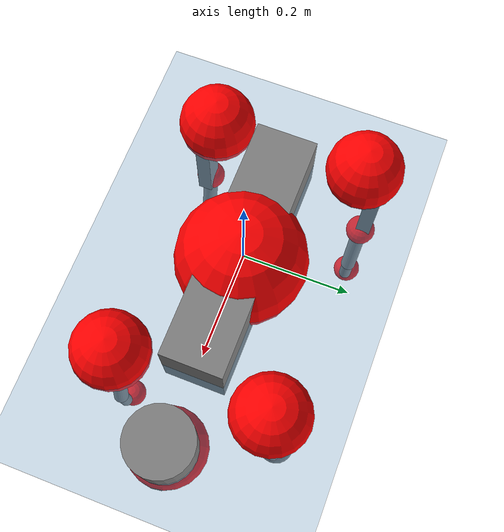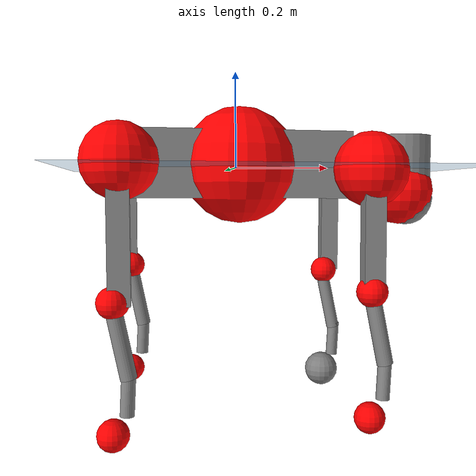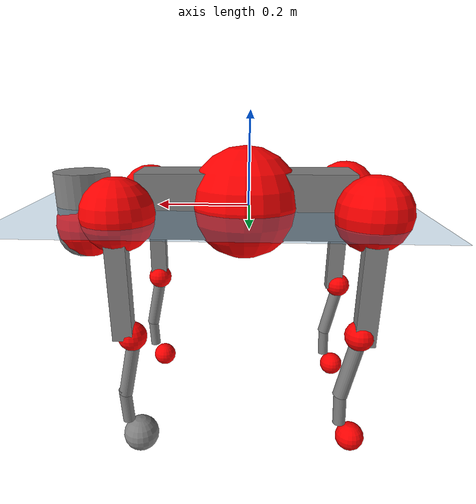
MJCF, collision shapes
<mujoco model="go2">
  <compiler angle="radian" assetdir="assets" balanceinertia="true" inertiafromgeom="false"/>

  <option timestep="0.005" density="1.2" viscosity="2e-05"/>

  <size nkey="1"/>

  <visual>
    <quality shadowsize="8192"/>
    <map shadowclip="0.5"/>
  </visual>

  <default>
    <default class="/">
      <geom contype="0" conaffinity="0" group="1" solref="-1000 -80"/>
      <site size="0.01 0.005 0.005" group="5"/>
      <general forcelimited="true" biastype="affine" gainprm="20" biasprm="0 -20 -0.5"/>
      <default class="go2">
        <joint armature="0.01" damping="0.01" frictionloss="0.2"/>
        <geom condim="1" margin="0.001"/>
        <default class="visual">
          <geom type="mesh" group="2"/>
        </default>
        <default class="collision">
          <geom group="3"/>
          <default class="foot">
            <geom size="0.022 0 0" condim="6" priority="1" friction="0.8 0.02 0.01" solimp="0.015 1 0.022"/>
          </default>
        </default>
        <default class="reward_collision_sphere">
          <geom group="5" rgba="1 0 0 1"/>
        </default>
      </default>
    </default>
  </default>

  <asset>
    <texture type="skybox" colorspace="auto" name="//unnamed_texture_0" builtin="gradient" rgb1="0.95 0.95 0.95" rgb2="0.95 0.95 0.95" width="100" height="600"/>
    <texture type="2d" colorspace="auto" name="texplane" builtin="checker" rgb1="0.345 0.575 0.748" rgb2="0.345 0.575 0.748" markrgb="1 1 1" width="512" height="512"/>
    <material name="MatPlane" class="/" texture="texplane" texuniform="true" texrepeat="2 2" specular="0.9"/>
    <material name="metal" class="/" rgba="0.9 0.95 0.95 1"/>
    <material name="black" class="/" rgba="0 0 0 1"/>
    <material name="white" class="/"/>
    <material name="gray" class="/" rgba="0.671705 0.692426 0.77427 1"/>
    <mesh name="base_0" class="/" file="base_0.obj"/>
    <mesh name="base_1" class="/" file="base_1.obj"/>
    <mesh name="base_2" class="/" file="base_2.obj"/>
    <mesh name="base_3" class="/" file="base_3.obj"/>
    <mesh name="base_4" class="/" file="base_4.obj"/>
    <mesh name="hip_0" class="/" file="hip_0.obj"/>
    <mesh name="hip_1" class="/" file="hip_1.obj"/>
    <mesh name="thigh_0" class="/" file="thigh_0.obj"/>
    <mesh name="thigh_1" class="/" file="thigh_1.obj"/>
    <mesh name="thigh_mirror_0" class="/" file="thigh_mirror_0.obj"/>
    <mesh name="thigh_mirror_1" class="/" file="thigh_mirror_1.obj"/>
    <mesh name="calf_0" class="/" file="calf_0.obj"/>
    <mesh name="calf_1" class="/" file="calf_1.obj"/>
    <mesh name="calf_mirror_0" class="/" file="calf_mirror_0.obj"/>
    <mesh name="calf_mirror_1" class="/" file="calf_mirror_1.obj"/>
    <mesh name="foot" class="/" file="foot.obj"/>
  </asset>

  <worldbody>
    <geom name="floor" class="/" size="100 100 0.125" type="plane" group="0" material="MatPlane"/>
    <light name="toplight_shadow" class="/" pos="0 0 5" dir="0.0990148 0.0990148 -0.990148" type="directional" ambient="0.04 0.04 0.04" diffuse="0.55 0.55 0.55" specular="0.12 0.12 0.12"/>
    <light name="toplight_fill" class="/" pos="0 0 5" dir="0.0990148 0.0990148 -0.990148" type="directional" castshadow="false" ambient="0.04 0.04 0.04" diffuse="0.3 0.3 0.3" specular="0.08 0.08 0.08"/>
    <body name="trunk" childclass="go2" pos="0.00843166 -0.000815427 0.00585627" quat="0.999993 0.00120707 0.00156507 -0.00313752">
      <inertial pos="0.0328563 -0.00637288 -0.00532539" quat="0.0327015 0.709817 -0.0376246 0.70262" mass="12.7606" diaginertia="0.285836 0.320492 0.0422883"/>
      <joint name="//unnamed_joint_0" type="free" armature="0" damping="0" frictionloss="0"/>
      <geom name="//unnamed_geom_1" class="visual" material="black" mesh="base_0"/>
      <geom name="//unnamed_geom_2" class="visual" material="black" mesh="base_1"/>
      <geom name="//unnamed_geom_3" class="visual" material="black" mesh="base_2"/>
      <geom name="//unnamed_geom_4" class="visual" material="white" mesh="base_3"/>
      <geom name="//unnamed_geom_5" class="visual" material="gray" mesh="base_4"/>
      <geom name="trunk_1" class="collision" size="0.232404 0.0577613 0.0704256" type="box"/>
      <geom name="trunk_2" class="collision" size="0.0617768 0.0555992" pos="0.362208 0 0.0116755" type="cylinder"/>
      <geom name="trunk_3" class="collision" size="0.0580702" pos="0.372375 0 -0.0700533"/>
      <geom name="//unnamed_geom_9" class="reward_collision_sphere" size="0.123554"/>
      <geom name="//unnamed_geom_10" class="reward_collision_sphere" size="0.0741322" pos="0.355853 0 -0.05254"/>
      <site name="imu" pos="-0.0647836 0.068337 0.0694318" size="0.0123554"/>
      <camera name="track" pos="0 -2.5363 0" quat="0.707107 0.707107 0 0" mode="trackcom"/>
      <camera name="ego_camera" pos="0.396522 0 0.05254" quat="-0.5 -0.5 0.5 0.5"/>
      <body name="FL_hip" pos="0.245765 0.0615679 0.00509471" quat="0.999978 0.000363715 0.00139316 -0.00646673">
        <inertial pos="-0.000842227 0.00313262 0.00254756" quat="0.529759 0.500455 0.478473 0.489861" mass="1.0868" diaginertia="0.00250143 0.00169238 0.000820177"/>
        <joint name="FL_hip_joint" pos="0 0 0" axis="0.999459 0.0317887 -0.00848154" stiffness="0.0148895" range="-1.27853 1.01448" armature="0.00641442" damping="0.0158933" frictionloss="0.259022"/>
        <geom name="//unnamed_geom_11" class="visual" material="metal" mesh="hip_0"/>
        <geom name="//unnamed_geom_12" class="visual" material="gray" mesh="hip_1"/>
        <geom name="//unnamed_geom_13" class="collision" size="0.0568347 0.0247107" pos="0 0.101452 0" quat="0.707107 0.707107 0 0" type="cylinder"/>
        <geom name="//unnamed_geom_14" class="reward_collision_sphere" size="0.0741322" pos="0 0.0887706 0"/>
        <body name="FL_thigh" pos="-0.00159616 0.123426 0.00361675" quat="1 -0.000158231 -6.57033e-05 1.66583e-05">
          <inertial pos="-0.00565673 -0.0165609 -0.024462" quat="0.829242 0.0829867 -0.0350894 0.551579" mass="2.22887" diaginertia="0.0195891 0.0208672 0.00188571"/>
          <joint name="FL_thigh_joint" pos="0 0 0" axis="-0.000563296 0.999978 -0.00658051" range="-1.54672 3.22916" armature="0.0164196" damping="0.0762338" frictionloss="0.246768"/>
          <geom name="//unnamed_geom_15" class="visual" material="metal" mesh="thigh_0"/>
          <geom name="//unnamed_geom_16" class="visual" material="gray" mesh="thigh_1"/>
          <geom name="//unnamed_geom_17" class="collision" size="0.131585 0.0151353 0.0210041" pos="0 0 -0.124345" quat="0.707107 0 0.707107 0" type="box"/>
          <body name="FL_calf" pos="-0.0139794 -0.0124592 -0.25691" quat="1 -2.6757e-05 0.000114273 -0.000276136">
            <inertial pos="0.011099 0.00579111 -0.17306" quat="0.70785 0.000377725 -0.00826483 0.706314" mass="0.39541" diaginertia="0.00451159 0.00501008 0.000118752"/>
            <joint name="FL_calf_joint" pos="0 0 0" axis="-0.0127416 0.999903 -0.00560861" stiffness="0.0659412" range="-2.87984 -0.621277" armature="0.0128815" damping="0" frictionloss="0.253389"/>
            <geom name="//unnamed_geom_18" class="visual" material="gray" mesh="calf_0"/>
            <geom name="//unnamed_geom_19" class="visual" material="black" mesh="calf_1"/>
            <geom name="FL_calf0" class="collision" size="0.0148264 0.0741322" pos="0.0101672 0 -0.0700533" quat="0.994493 0 -0.104807 0" type="cylinder"/>
            <geom name="//unnamed_geom_21" class="collision" size="0.0135909 0.0401549" pos="0.0254181 0 -0.172798" quat="0.999688 0 0.0249974 0" type="cylinder"/>
            <geom name="//unnamed_geom_22" class="visual" pos="0 0 -0.248689" quat="1 0 0 0" material="black" mesh="foot"/>
            <geom name="FL_foot" class="foot" size="0.0397274" pos="-0.00254181 0 -0.248689"/>
            <geom name="//unnamed_geom_24" class="reward_collision_sphere" size="0.0308884"/>
            <geom name="//unnamed_geom_25" class="reward_collision_sphere" size="0.0308884" pos="-0.00254181 0 -0.248689"/>
            <site name="FL_foot" class="foot" pos="-0.00254181 0 -0.248689" size="0.0123554"/>
          </body>
        </body>
      </body>
      <body name="FR_hip" pos="0.240183 -0.0648926 -0.0121094" quat="1 2.285e-05 -0.000614869 -9.98801e-05">
        <inertial pos="-0.00416803 0.0055246 0.00115828" quat="0.529748 0.513564 0.50464 0.448283" mass="1.06657" diaginertia="0.00267056 0.00155809 0.000865822"/>
        <joint name="FR_hip_joint" pos="0 0 0" axis="0.999998 0.000842528 0.00169034" stiffness="0.00097078" range="-1.22192 1.0566" armature="0.0123111" damping="0" frictionloss="0.20141"/>
        <geom name="//unnamed_geom_26" class="visual" pos="0 8.76355e-10 3.75887e-08" quat="4.63268e-05 1 0 0" material="metal" mesh="hip_0"/>
        <geom name="//unnamed_geom_27" class="visual" pos="0 1.42068e-09 -9.29712e-08" quat="4.63268e-05 1 0 0" material="gray" mesh="hip_1"/>
        <geom name="//unnamed_geom_28" class="collision" size="0.0568347 0.0247107" pos="0 -0.101452 0" quat="0.707107 0.707107 0 0" type="cylinder"/>
        <geom name="//unnamed_geom_29" class="reward_collision_sphere" size="0.0741322" pos="0 -0.0887706 0"/>
        <body name="FR_thigh" pos="-0.00547069 -0.121096 0.00955103" quat="0.999999 -0.000221948 -0.00132457 0.00101294">
          <inertial pos="-0.00397329 0.0284342 -0.0257754" quat="0.556762 -0.0695694 0.131959 0.817168" mass="1.76768" diaginertia="0.018018 0.0162834 0.00162066"/>
          <joint name="FR_thigh_joint" pos="0 0 0" axis="-0.00354447 -0.999962 -0.00801023" stiffness="0.0175948" range="-3.24879 1.38016" armature="0.0178008" damping="0.0148638" frictionloss="0.221566"/>
          <geom name="//unnamed_geom_30" class="visual" material="metal" mesh="thigh_mirror_0"/>
          <geom name="//unnamed_geom_31" class="visual" material="gray" mesh="thigh_mirror_1"/>
          <geom name="//unnamed_geom_32" class="collision" size="0.131585 0.0151353 0.0210041" pos="0 0 -0.124345" quat="0.707107 0 0.707107 0" type="box"/>
          <body name="FR_calf" pos="-0.000528856 0.00053854 -0.247424" quat="1 6.37742e-08 2.85651e-07 6.91296e-07">
            <inertial pos="0.00642767 0.00195804 -0.179128" quat="0.691736 0.0217856 0.00773849 0.721781" mass="0.596918" diaginertia="0.00546647 0.00469142 0.000154791"/>
            <joint name="FR_calf_joint" pos="0 0 0" axis="0.00591708 -0.999861 0.0156192" stiffness="0.0289636" range="0.864556 2.84507" armature="0.00691899" damping="0.00556887" frictionloss="0.252949"/>
            <geom name="//unnamed_geom_33" class="visual" material="gray" mesh="calf_mirror_0"/>
            <geom name="//unnamed_geom_34" class="visual" material="black" mesh="calf_mirror_1"/>
            <geom name="FR_calf0" class="collision" size="0.016062 0.0741322" pos="0.012709 0 -0.0700533" quat="0.995004 0 -0.0998334 0" type="cylinder"/>
            <geom name="//unnamed_geom_36" class="collision" size="0.0135909 0.0401549" pos="0.0254181 0 -0.172798" quat="0.999688 0 0.0249974 0" type="cylinder"/>
            <geom name="//unnamed_geom_37" class="visual" pos="0 0 -0.248689" quat="1 0 0 0" material="black" mesh="foot"/>
            <geom name="FR_foot" class="foot" size="0.0217828" pos="-0.00254181 0 -0.248689"/>
            <geom name="//unnamed_geom_39" class="reward_collision_sphere" size="0.0308884"/>
            <geom name="//unnamed_geom_40" class="reward_collision_sphere" size="0.0308884" pos="-0.00254181 0 -0.248689"/>
            <site name="FR_foot" class="foot" pos="-0.00254181 0 -0.248689" size="0.0123554"/>
          </body>
        </body>
      </body>
      <body name="RL_hip" pos="-0.244393 0.0644263 0.0117536" quat="1 -2.12312e-06 -9.98188e-05 4.30676e-05">
        <inertial pos="0.00826366 0.00220664 0.0114337" quat="0.507114 0.495569 0.497989 0.499253" mass="1.10116" diaginertia="0.00255564 0.00215938 0.00105038"/>
        <joint name="RL_hip_joint" pos="0 0 0" axis="-0.999918 0.00475212 0.0119058" range="-1.31287 0.820491" armature="0.0123164" damping="0.0457061" frictionloss="0.107165"/>
        <geom name="//unnamed_geom_41" class="visual" pos="-9.00332e-10 0 -1.76486e-07" quat="4.63268e-05 0 1 0" material="metal" mesh="hip_0"/>
        <geom name="//unnamed_geom_42" class="visual" pos="-1.45955e-09 0 -1.56518e-07" quat="4.63268e-05 0 1 0" material="gray" mesh="hip_1"/>
        <geom name="//unnamed_geom_43" class="collision" size="0.0568347 0.0247107" pos="0 0.101452 0" quat="0.707107 0.707107 0 0" type="cylinder"/>
        <geom name="//unnamed_geom_44" class="reward_collision_sphere" size="0.0741322" pos="0 0.0887706 0"/>
        <body name="RL_thigh" pos="0.000361945 0.123406 -0.00238177" quat="1 0.000128153 -4.83776e-05 4.02436e-05">
          <inertial pos="0.00626028 -0.0294332 -0.0245816" quat="0.826304 0.0629813 -0.0713585 0.555125" mass="2.08021" diaginertia="0.0213628 0.0182785 0.00205174"/>
          <joint name="RL_thigh_joint" pos="0 0 0" axis="-0.0277659 0.998506 0.0470687" stiffness="0.017717" range="-0.298244 4.57135" armature="0.00980919" damping="0" frictionloss="0.230561"/>
          <geom name="//unnamed_geom_45" class="visual" material="metal" mesh="thigh_0"/>
          <geom name="//unnamed_geom_46" class="visual" material="gray" mesh="thigh_1"/>
          <geom name="//unnamed_geom_47" class="collision" size="0.131585 0.0151353 0.0210041" pos="0 0 -0.124345" quat="0.707107 0 0.707107 0" type="box"/>
          <body name="RL_calf" pos="0.00736564 -0.0049554 -0.239772" quat="1 -0.000141027 -0.000162817 0.000213464">
            <inertial pos="0.00140056 0.00623648 -0.172924" quat="0.704438 -0.0112929 0.0413791 0.708468" mass="0.514516" diaginertia="0.00494972 0.00460702 0.000122874"/>
            <joint name="RL_calf_joint" pos="0 0 0" axis="0.0151133 0.999535 0.0264865" stiffness="0.0686374" range="-2.79657 -0.826044" armature="0.0113438" damping="0.00521653" frictionloss="0.163043"/>
            <geom name="//unnamed_geom_48" class="visual" material="gray" mesh="calf_0"/>
            <geom name="//unnamed_geom_49" class="visual" material="black" mesh="calf_1"/>
            <geom name="RL_calf0" class="collision" size="0.016062 0.0741322" pos="0.012709 0 -0.0700533" quat="0.995004 0 -0.0998334 0" type="cylinder"/>
            <geom name="//unnamed_geom_51" class="collision" size="0.0135909 0.0401549" pos="0.0254181 0 -0.172798" quat="0.999688 0 0.0249974 0" type="cylinder"/>
            <geom name="//unnamed_geom_52" class="visual" pos="0 0 -0.248689" quat="1 0 0 0" material="black" mesh="foot"/>
            <geom name="RL_foot" class="foot" size="0.0228648" pos="-0.00254181 0 -0.248689"/>
            <geom name="//unnamed_geom_54" class="reward_collision_sphere" size="0.0308884"/>
            <geom name="//unnamed_geom_55" class="reward_collision_sphere" size="0.0308884" pos="-0.00254181 0 -0.248689"/>
            <site name="RL_foot" class="foot" pos="-0.00254181 0 -0.248689" size="0.0123554"/>
          </body>
        </body>
      </body>
      <body name="RR_hip" pos="-0.244333 -0.0558375 -6.73352e-05" quat="0.999998 6.72172e-05 -0.00183285 0.00106575">
        <inertial pos="0.00802747 -0.0135612 0.00830297" quat="0.500575 0.496292 0.49904 0.504061" mass="1.39346" diaginertia="0.00346127 0.0023188 0.00121655"/>
        <joint name="RR_hip_joint" pos="0 0 0" axis="-0.999826 -0.0171 0.00740772" range="-1.13137 1.2426" armature="0.0159865" damping="0.0617277" frictionloss="0.197807"/>
        <geom name="//unnamed_geom_56" class="visual" pos="9.00236e-10 8.76355e-10 -2.14074e-07" quat="2.14617e-09 4.63268e-05 4.63268e-05 -1" material="metal" mesh="hip_0"/>
        <geom name="//unnamed_geom_57" class="visual" pos="1.45978e-09 1.42068e-09 -6.35465e-08" quat="2.14617e-09 4.63268e-05 4.63268e-05 -1" material="gray" mesh="hip_1"/>
        <geom name="//unnamed_geom_58" class="collision" size="0.0568347 0.0247107" pos="0 -0.101452 0" quat="0.707107 0.707107 0 0" type="cylinder"/>
        <geom name="//unnamed_geom_59" class="reward_collision_sphere" size="0.0741322" pos="0 -0.0887706 0"/>
        <body name="RR_thigh" pos="-0.00142763 -0.119492 -0.0120195" quat="1 -0.000392903 0.000189191 0.000174947">
          <inertial pos="0.00249844 0.0197859 -0.0382335" quat="0.553883 -0.022507 0.0827219 0.828169" mass="2.74584" diaginertia="0.0207328 0.0215614 0.00188206"/>
          <joint name="RR_thigh_joint" pos="0 0 0" axis="0.0105405 -0.999737 0.0203889" range="-4.29679 0.299115" armature="0.0126532" damping="0.00455986" frictionloss="0.371489"/>
          <geom name="//unnamed_geom_60" class="visual" material="metal" mesh="thigh_mirror_0"/>
          <geom name="//unnamed_geom_61" class="visual" material="gray" mesh="thigh_mirror_1"/>
          <geom name="//unnamed_geom_62" class="collision" size="0.131585 0.0151353 0.0210041" pos="0 0 -0.124345" quat="0.707107 0 0.707107 0" type="box"/>
          <body name="RR_calf" pos="-0.0123669 0.000806275 -0.250043" quat="1 -0.000495436 3.66908e-05 0.000372227">
            <inertial pos="0.00416788 0.000187701 -0.16644" quat="0.706724 -0.0060852 0.00220993 0.70746" mass="0.555939" diaginertia="0.00555551 0.00526242 0.00012744"/>
            <joint name="RR_calf_joint" pos="0 0 0" axis="-0.0231847 -0.999443 -0.0240171" stiffness="0.0458291" range="0.865434 2.58808" armature="0.0154087" damping="0.0686166" frictionloss="0.229924"/>
            <geom name="//unnamed_geom_63" class="visual" material="gray" mesh="calf_mirror_0"/>
            <geom name="//unnamed_geom_64" class="visual" material="black" mesh="calf_mirror_1"/>
            <geom name="RR_calf0" class="collision" size="0.016062 0.0741322" pos="0.012709 0 -0.0700533" quat="0.995004 0 -0.0998334 0" type="cylinder"/>
            <geom name="//unnamed_geom_66" class="collision" size="0.0135909 0.0401549" pos="0.0254181 0 -0.172798" quat="0.999688 0 0.0249974 0" type="cylinder"/>
            <geom name="//unnamed_geom_67" class="visual" pos="0 0 -0.248689" quat="1 0 0 0" material="black" mesh="foot"/>
            <geom name="RR_foot" class="foot" size="0.0289263" pos="-0.00254181 0 -0.248689"/>
            <geom name="//unnamed_geom_69" class="reward_collision_sphere" size="0.0308884"/>
            <geom name="//unnamed_geom_70" class="reward_collision_sphere" size="0.0308884" pos="-0.00254181 0 -0.248689"/>
            <site name="RR_foot" class="foot" pos="-0.00254181 0 -0.248689" size="0.0123554"/>
          </body>
        </body>
      </body>
    </body>
  </worldbody>

  <contact>
    <pair class="/" geom1="floor" geom2="FL_foot" name="//unnamed_contact_0"/>
    <pair class="/" geom1="floor" geom2="FR_foot" name="//unnamed_contact_1"/>
    <pair class="/" geom1="floor" geom2="RL_foot" name="//unnamed_contact_2"/>
    <pair class="/" geom1="floor" geom2="RR_foot" name="//unnamed_contact_3"/>
  </contact>

  <actuator>
    <general name="FL_hip" class="/" joint="FL_hip_joint" forcerange="-27.8622 27.8622" gainprm="26.9808" biasprm="0 -26.9808 -0.449239"/>
    <general name="FL_thigh" class="/" joint="FL_thigh_joint" forcerange="-17.8849 17.8849" gainprm="26.9808" biasprm="0 -26.9808 -0.449239"/>
    <general name="FL_calf" class="/" joint="FL_calf_joint" forcerange="-80.2681 80.2681" gainprm="26.9808" biasprm="0 -26.9808 -0.449239"/>
    <general name="FR_hip" class="/" joint="FR_hip_joint" forcerange="-29.4522 29.4522" gainprm="26.9808" biasprm="0 -26.9808 -0.449239"/>
    <general name="FR_thigh" class="/" joint="FR_thigh_joint" forcerange="-21.5333 21.5333" gainprm="26.9808" biasprm="0 -26.9808 -0.449239"/>
    <general name="FR_calf" class="/" joint="FR_calf_joint" forcerange="-26.4502 26.4502" gainprm="26.9808" biasprm="0 -26.9808 -0.449239"/>
    <general name="RL_hip" class="/" joint="RL_hip_joint" forcerange="-16.4644 16.4644" gainprm="26.9808" biasprm="0 -26.9808 -0.449239"/>
    <general name="RL_thigh" class="/" joint="RL_thigh_joint" forcerange="-23.1929 23.1929" gainprm="26.9808" biasprm="0 -26.9808 -0.449239"/>
    <general name="RL_calf" class="/" joint="RL_calf_joint" forcerange="-59.9763 59.9763" gainprm="26.9808" biasprm="0 -26.9808 -0.449239"/>
    <general name="RR_hip" class="/" joint="RR_hip_joint" forcerange="-27.9973 27.9973" gainprm="26.9808" biasprm="0 -26.9808 -0.449239"/>
    <general name="RR_thigh" class="/" joint="RR_thigh_joint" forcerange="-43.8903 43.8903" gainprm="26.9808" biasprm="0 -26.9808 -0.449239"/>
    <general name="RR_calf" class="/" joint="RR_calf_joint" forcerange="-76.5306 76.5306" gainprm="26.9808" biasprm="0 -26.9808 -0.449239"/>
  </actuator>

  <sensor>
    <gyro site="imu" name="imu_angular_velocity"/>
    <velocimeter site="imu" name="imu_linear_velocity"/>
    <framelinvel objtype="site" objname="FL_foot" name="FL_foot_global_linear_velocity"/>
    <framelinvel objtype="site" objname="FR_foot" name="FR_foot_global_linear_velocity"/>
    <framelinvel objtype="site" objname="RL_foot" name="RL_foot_global_linear_velocity"/>
    <framelinvel objtype="site" objname="RR_foot" name="RR_foot_global_linear_velocity"/>
  </sensor>

  <keyframe>
    <key name="home" qpos="0 0 0.325 1 0 0 0 0.1 0.8 -1.5 -0.1 -0.8 1.5 -0.1 0.8 -1.5 0.1 -0.8 1.5"/>
  </keyframe>
</mujoco>
